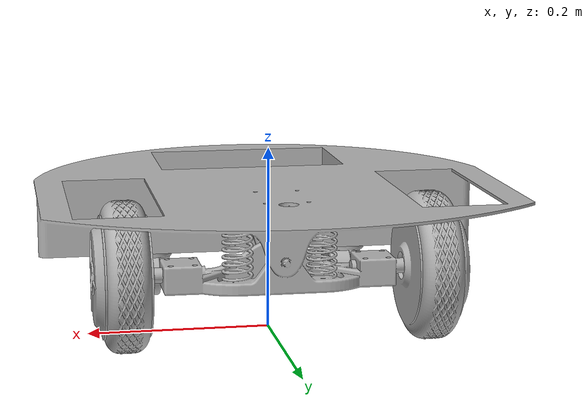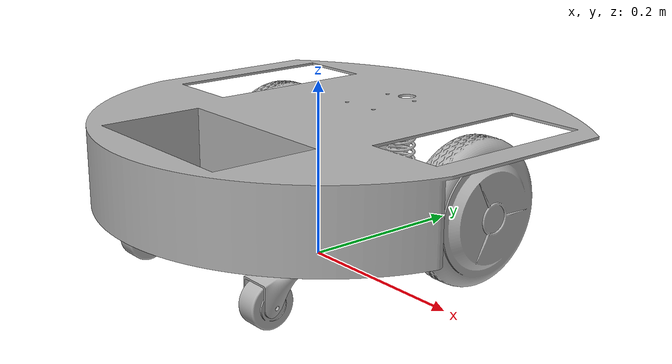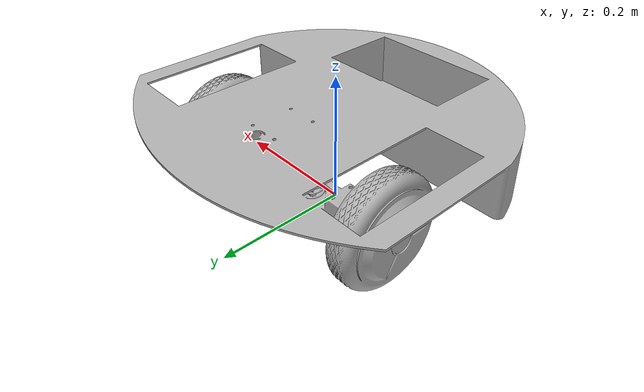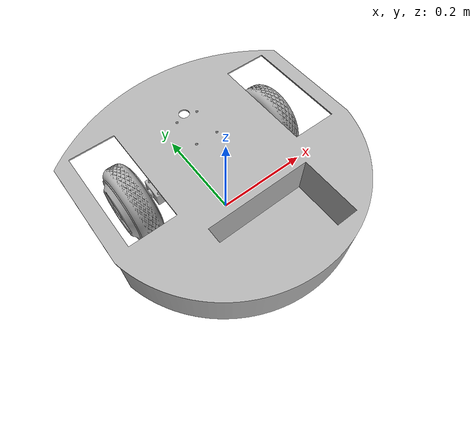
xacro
<?xml version="1.0" ?>
<robot name="Bobert" xmlns:xacro="http://www.ros.org/wiki/xacro">

<xacro:include filename="$(find Bobert_description)/urdf/materials.xacro" />
<xacro:include filename="$(find Bobert_description)/urdf/Bobert.ros2control" />
<xacro:include filename="$(find Bobert_description)/urdf/Bobert.gazebo" />
<link name="base_link">
  <inertial>
    <origin xyz="0.001616444348881833 -0.09751365978043731 0.11848829155889322" rpy="0 0 0"/>
    <mass value="40.76877140504577"/>
    <inertia ixx="0.370897" iyy="0.764615" izz="1.06958" ixy="-7.6e-05" iyz="-0.010092" ixz="2e-06"/>
  </inertial>
  <visual>
    <origin xyz="0 0 0" rpy="0 0 0"/>
    <geometry>
      <mesh filename="file://$(find Bobert_description)/meshes/base_link.stl" scale="0.001 0.001 0.001"/>
    </geometry>
    <material name="silver"/>
  </visual>
  <collision>
    <origin xyz="0 0 0" rpy="0 0 0"/>
    <geometry>
      <mesh filename="file://$(find Bobert_description)/meshes/base_link.stl" scale="0.001 0.001 0.001"/>
    </geometry>
  </collision>
</link>

<link name="wheel_left_1">
  <inertial>
    <origin xyz="0.026516397789354718 2.2139738049820057e-07 1.5630537235356012e-07" rpy="0 0 0"/>
    <mass value="7.63884245237393"/>
    <inertia ixx="0.021571" iyy="0.012513" izz="0.012513" ixy="0.0" iyz="0.0" ixz="-0.0"/>
  </inertial>
  <visual>
    <origin xyz="-0.140106 -0.071315 -0.080345" rpy="0 0 0"/>
    <geometry>
      <mesh filename="file://$(find Bobert_description)/meshes/wheel_left_1.stl" scale="0.001 0.001 0.001"/>
    </geometry>
    <material name="silver"/>
  </visual>
  <collision>
    <origin xyz="-0.140106 -0.071315 -0.080345" rpy="0 0 0"/>
    <geometry>
      <mesh filename="file://$(find Bobert_description)/meshes/wheel_left_1.stl" scale="0.001 0.001 0.001"/>
    </geometry>
  </collision>
</link>

<link name="wheel_rigth_1">
  <inertial>
    <origin xyz="-0.02651633470004558 1.1334412741703659e-07 2.1659195333090242e-07" rpy="0 0 0"/>
    <mass value="7.638838185872935"/>
    <inertia ixx="0.021571" iyy="0.012513" izz="0.012513" ixy="0.0" iyz="0.0" ixz="-0.0"/>
  </inertial>
  <visual>
    <origin xyz="0.136894 -0.071315 -0.080345" rpy="0 0 0"/>
    <geometry>
      <mesh filename="file://$(find Bobert_description)/meshes/wheel_rigth_1.stl" scale="0.001 0.001 0.001"/>
    </geometry>
    <material name="silver"/>
  </visual>
  <collision>
    <origin xyz="0.136894 -0.071315 -0.080345" rpy="0 0 0"/>
    <geometry>
      <mesh filename="file://$(find Bobert_description)/meshes/wheel_rigth_1.stl" scale="0.001 0.001 0.001"/>
    </geometry>
  </collision>
</link>

<link name="rotatori_suport_rigth_1">
  <inertial>
    <origin xyz="-0.0016060124775976597 -0.010448003356963081 -0.1757990893415789" rpy="0 0 0"/>
    <mass value="0.21087231289276429"/>
    <inertia ixx="9.6e-05" iyy="8e-05" izz="0.000112" ixy="-0.0" iyz="-2.7e-05" ixz="-0.0"/>
  </inertial>
  <visual>
    <origin xyz="0.111788 0.13187 -0.231706" rpy="0 0 0"/>
    <geometry>
      <mesh filename="file://$(find Bobert_description)/meshes/rotatori_suport_rigth_1.stl" scale="0.001 0.001 0.001"/>
    </geometry>
    <material name="silver"/>
  </visual>
  <collision>
    <origin xyz="0.111788 0.13187 -0.231706" rpy="0 0 0"/>
    <geometry>
      <mesh filename="file://$(find Bobert_description)/meshes/rotatori_suport_rigth_1.stl" scale="0.001 0.001 0.001"/>
    </geometry>
  </collision>
</link>

<link name="rotatori_suport_left_1">
  <inertial>
    <origin xyz="-0.0016060124775970491 -0.010448003356962998 -0.17579908934157884" rpy="0 0 0"/>
    <mass value="0.21087231289276429"/>
    <inertia ixx="9.6e-05" iyy="8e-05" izz="0.000112" ixy="-0.0" iyz="-2.7e-05" ixz="-0.0"/>
  </inertial>
  <visual>
    <origin xyz="-0.118212 0.13187 -0.231706" rpy="0 0 0"/>
    <geometry>
      <mesh filename="file://$(find Bobert_description)/meshes/rotatori_suport_left_1.stl" scale="0.001 0.001 0.001"/>
    </geometry>
    <material name="silver"/>
  </visual>
  <collision>
    <origin xyz="-0.118212 0.13187 -0.231706" rpy="0 0 0"/>
    <geometry>
      <mesh filename="file://$(find Bobert_description)/meshes/rotatori_suport_left_1.stl" scale="0.001 0.001 0.001"/>
    </geometry>
  </collision>
</link>

<link name="road_left_1">
  <inertial>
    <origin xyz="-0.15829771963284017 0.10574320309753191 -0.020646828759012834" rpy="0 0 0"/>
    <mass value="0.3614984125144465"/>
    <inertia ixx="0.000107" iyy="7.2e-05" izz="7.2e-05" ixy="0.0" iyz="0.0" ixz="0.0"/>
  </inertial>
  <visual>
    <origin xyz="-0.275041 0.264178 -0.0455" rpy="0 0 0"/>
    <geometry>
      <mesh filename="file://$(find Bobert_description)/meshes/road_left_1.stl" scale="0.001 0.001 0.001"/>
    </geometry>
    <material name="silver"/>
  </visual>
  <collision>
    <origin xyz="-0.275041 0.264178 -0.0455" rpy="0 0 0"/>
    <geometry>
      <mesh filename="file://$(find Bobert_description)/meshes/road_left_1.stl" scale="0.001 0.001 0.001"/>
    </geometry>
  </collision>
</link>

<link name="road_rigth_1">
  <inertial>
    <origin xyz="-0.15829771963284073 -0.12425679690246823 -0.02064682875901287" rpy="0 0 0"/>
    <mass value="0.3614984125144465"/>
    <inertia ixx="0.000107" iyy="7.2e-05" izz="7.2e-05" ixy="0.0" iyz="0.0" ixz="0.0"/>
  </inertial>
  <visual>
    <origin xyz="-0.045041 0.034178 -0.0455" rpy="0 0 0"/>
    <geometry>
      <mesh filename="file://$(find Bobert_description)/meshes/road_rigth_1.stl" scale="0.001 0.001 0.001"/>
    </geometry>
    <material name="silver"/>
  </visual>
  <collision>
    <origin xyz="-0.045041 0.034178 -0.0455" rpy="0 0 0"/>
    <geometry>
      <mesh filename="file://$(find Bobert_description)/meshes/road_rigth_1.stl" scale="0.001 0.001 0.001"/>
    </geometry>
  </collision>
</link>

<joint name="Revolution 3" type="continuous">
  <origin xyz="0.140106 0.071315 0.080345" rpy="0 0 0"/>
  <parent link="base_link"/>
  <child link="wheel_left_1"/>
  <axis xyz="1.0 0.0 0.0"/>
</joint>

<joint name="Revolution  4" type="continuous">
  <origin xyz="-0.136894 0.071315 0.080345" rpy="0 0 0"/>
  <parent link="base_link"/>
  <child link="wheel_rigth_1"/>
  <axis xyz="-1.0 -0.0 0.0"/>
</joint>

<joint name="Revolution  5" type="continuous">
  <origin xyz="-0.111788 -0.13187 0.231706" rpy="0 0 0"/>
  <parent link="base_link"/>
  <child link="rotatori_suport_rigth_1"/>
  <axis xyz="-0.0 0.0 -1.0"/>
</joint>

<joint name="Revolution 6" type="continuous">
  <origin xyz="0.118212 -0.13187 0.231706" rpy="0 0 0"/>
  <parent link="base_link"/>
  <child link="rotatori_suport_left_1"/>
  <axis xyz="-0.0 0.0 -1.0"/>
</joint>

<joint name="Revolution  7" type="continuous">
  <origin xyz="0.156829 -0.132308 -0.186206" rpy="0 0 0"/>
  <parent link="rotatori_suport_left_1"/>
  <child link="road_left_1"/>
  <axis xyz="-1.0 -0.0 0.0"/>
</joint>

<joint name="Revolution  8" type="continuous">
  <origin xyz="0.156829 0.097692 -0.186206" rpy="0 0 0"/>
  <parent link="rotatori_suport_rigth_1"/>
  <child link="road_rigth_1"/>
  <axis xyz="-1.0 -0.0 0.0"/>
</joint>

</robot>

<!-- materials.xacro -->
<robot name="Bobert" xmlns:xacro="http://www.ros.org/wiki/xacro" >

<material name="silver">
  <color rgba="0.700 0.700 0.700 1.000"/>
</material>

</robot>

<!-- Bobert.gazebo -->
<robot name="Bobert" xmlns:xacro="http://www.ros.org/wiki/xacro" >

<xacro:property name="body_color" value="Gazebo/Silver" />

<gazebo reference="base_link">
  <material>${body_color}</material>
  <mu1>0.2</mu1>
  <mu2>0.2</mu2>
  <self_collide>true</self_collide>
  <gravity>true</gravity>
</gazebo>

<gazebo reference="wheel_left_1">
  <material>${body_color}</material>
  <mu1>0.2</mu1>
  <mu2>0.2</mu2>
  <self_collide>true</self_collide>
</gazebo>

<gazebo reference="wheel_rigth_1">
  <material>${body_color}</material>
  <mu1>0.2</mu1>
  <mu2>0.2</mu2>
  <self_collide>true</self_collide>
</gazebo>

<gazebo reference="rotatori_suport_rigth_1">
  <material>${body_color}</material>
  <mu1>0.2</mu1>
  <mu2>0.2</mu2>
  <self_collide>true</self_collide>
</gazebo>

<gazebo reference="rotatori_suport_left_1">
  <material>${body_color}</material>
  <mu1>0.2</mu1>
  <mu2>0.2</mu2>
  <self_collide>true</self_collide>
</gazebo>

<gazebo reference="road_left_1">
  <material>${body_color}</material>
  <mu1>0.2</mu1>
  <mu2>0.2</mu2>
  <self_collide>true</self_collide>
</gazebo>

<gazebo reference="road_rigth_1">
  <material>${body_color}</material>
  <mu1>0.2</mu1>
  <mu2>0.2</mu2>
  <self_collide>true</self_collide>
</gazebo>

</robot>
